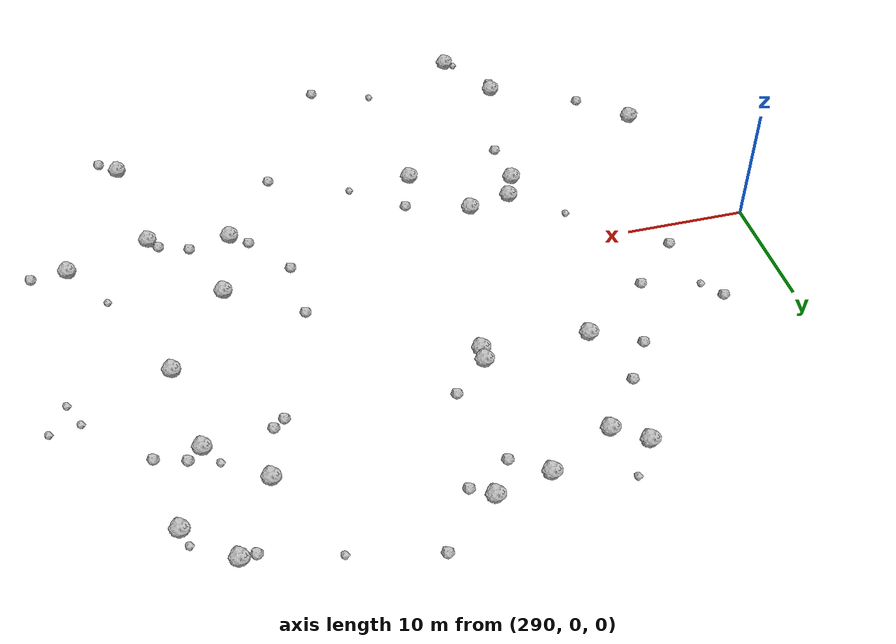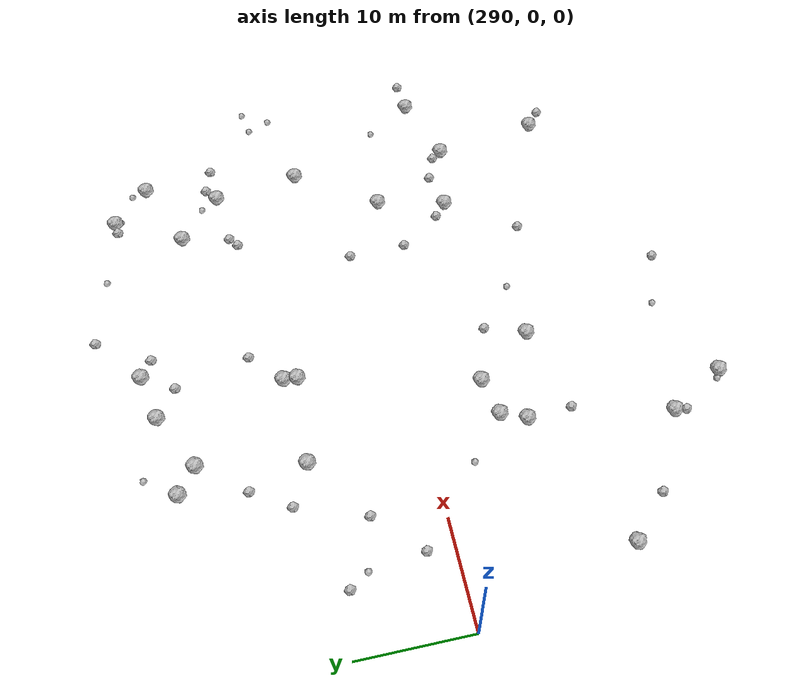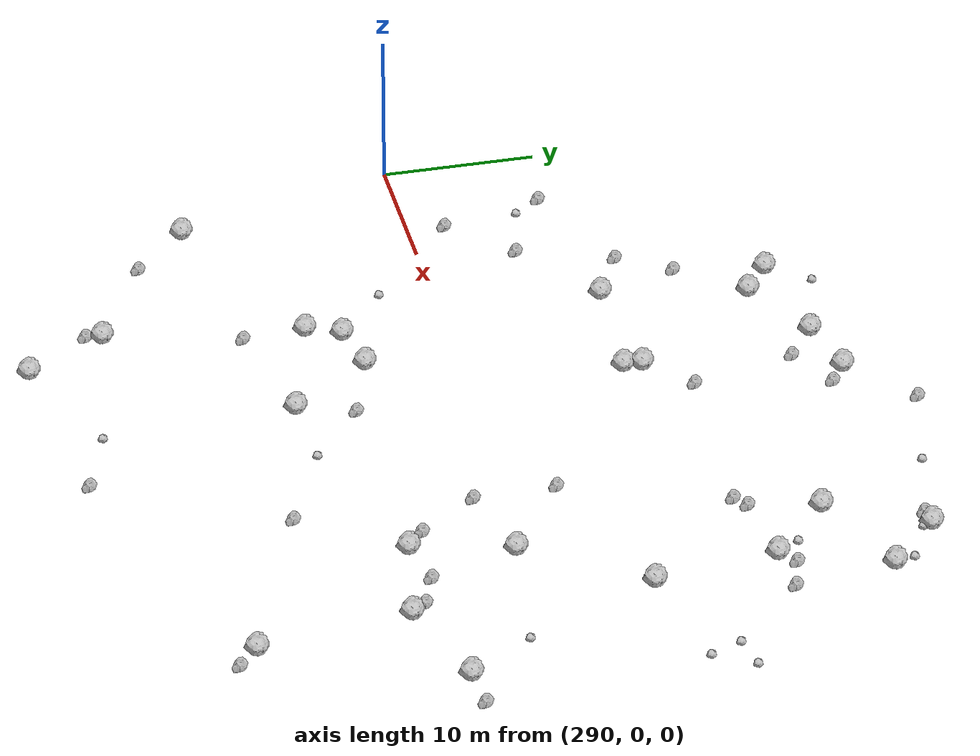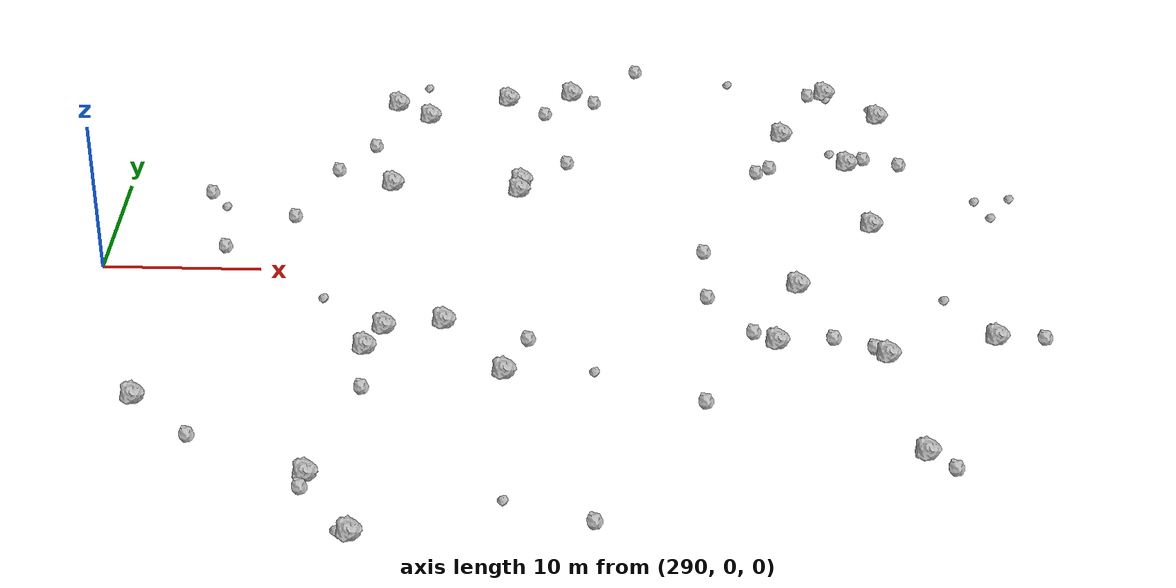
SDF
<sdf version="1.6">
 <world name="default">
  <include><uri>model://sun</uri></include>
  <model name="rock1_8_3">
   <include><uri>model://rock1</uri><pose>318.7757568598004 23.28437504423281 0.5 0 0 0</pose></include>
  </model>
  <model name="rock1_8_4">
   <include><uri>model://rock1</uri><pose>338.6808811876296 6.18847226156506 0.5 0 0 0</pose></include>
  </model>
  <model name="rock1_8_5">
   <include><uri>model://rock1</uri><pose>315.9675963432971 -11.134021184540973 0.5 0 0 0</pose></include>
  </model>
  <model name="rock1_8_6">
   <include><uri>model://rock1</uri><pose>338.72309137357973 -8.628606693581414 0.5 0 0 0</pose></include>
  </model>
  <model name="rock1_8_7">
   <include><uri>model://rock1</uri><pose>308.50104352352184 -26.676733495208346 0.5 0 0 0</pose></include>
  </model>
  <model name="rock1_8_8">
   <include><uri>model://rock1</uri><pose>314.40831440547595 22.36083500076979 0.5 0 0 0</pose></include>
  </model>
  <model name="rock1_8_9">
   <include><uri>model://rock1</uri><pose>333.2984260417622 17.918407116618944 0.5 0 0 0</pose></include>
  </model>
  <model name="rock1_8_10">
   <include><uri>model://rock1</uri><pose>308.42277807576045 -6.641517182637298 0.5 0 0 0</pose></include>
  </model>
  <model name="rock1_8_11">
   <include><uri>model://rock1</uri><pose>340.2347119071711 -18.28526490983169 0.5 0 0 0</pose></include>
  </model>
  <model name="rock1_8_12">
   <include><uri>model://rock1</uri><pose>345.3913116923825 -6.533258199208234 0.5 0 0 0</pose></include>
  </model>
  <model name="rock1_8_13">
   <include><uri>model://rock1</uri><pose>307.4672368485878 -8.856676204022992 0.5 0 0 0</pose></include>
  </model>
  <model name="rock1_8_14">
   <include><uri>model://rock1</uri><pose>315.7815906832523 9.852822588881757 0.5 0 0 0</pose></include>
  </model>
  <model name="rock1_8_15">
   <include><uri>model://rock1</uri><pose>309.1248048289554 19.701991646459078 0.5 0 0 0</pose></include>
  </model>
  <model name="rock1_8_16">
   <include><uri>model://rock1</uri><pose>337.5492328920947 14.06913604780344 0.5 0 0 0</pose></include>
  </model>
  <model name="rock1_8_17">
   <include><uri>model://rock1</uri><pose>340.00811959680493 20.68041391281224 0.5 0 0 0</pose></include>
  </model>
  <model name="rock1_8_18">
   <include><uri>model://rock1</uri><pose>315.874788268368 11.065002026704981 0.5 0 0 0</pose></include>
  </model>
  <model name="rock1_8_19">
   <include><uri>model://rock1</uri><pose>332.17166095021423 -7.448832313529458 0.5 0 0 0</pose></include>
  </model>
  <model name="rock1_8_20">
   <include><uri>model://rock1</uri><pose>307.37881515999845 10.419829924681643 0.5 0 0 0</pose></include>
  </model>
  <model name="rock1_8_21">
   <include><uri>model://rock1</uri><pose>312.0172239082052 -5.921945636129344 0.5 0 0 0</pose></include>
  </model>
  <model name="rock1_8_22">
   <include><uri>model://rock1</uri><pose>294.53545321785566 -14.432014913531045 0.5 0 0 0</pose></include>
  </model>
  <model name="rock1_8_23">
   <include><uri>model://rock1</uri><pose>333.65509030437573 -1.1614307665831625 0.5 0 0 0</pose></include>
  </model>
  <model name="rock1_8_24">
   <include><uri>model://rock1</uri><pose>336.5232864060995 23.95498868831136 0.5 0 0 0</pose></include>
  </model>
  <model name="rock1_8_25">
   <include><uri>model://rock1</uri><pose>306.7677256426468 21.41070202268169 0.5 0 0 0</pose></include>
  </model>
  <model name="rock1_8_26">
   <include><uri>model://rock1</uri><pose>305.49184237793895 -21.514937797220774 0.5 0 0 0</pose></include>
  </model>
  <model name="rock2_8_0">
   <include><uri>model://rock2</uri><pose>331.4328481759642 12.879748188487177 0.3 0 0 0</pose></include>
  </model>
  <model name="rock2_8_1">
   <include><uri>model://rock2</uri><pose>307.69259958126787 -12.886401089149338 0.3 0 0 0</pose></include>
  </model>
  <model name="rock2_8_2">
   <include><uri>model://rock2</uri><pose>332.3283508272951 13.55125110597622 0.3 0 0 0</pose></include>
  </model>
  <model name="rock2_8_3">
   <include><uri>model://rock2</uri><pose>321.6727723382732 -25.082867534015033 0.3 0 0 0</pose></include>
  </model>
  <model name="rock2_8_4">
   <include><uri>model://rock2</uri><pose>341.7080300174545 -19.579580110463514 0.3 0 0 0</pose></include>
  </model>
  <model name="rock2_8_5">
   <include><uri>model://rock2</uri><pose>318.76917102354844 13.719671715177114 0.3 0 0 0</pose></include>
  </model>
  <model name="rock2_8_6">
   <include><uri>model://rock2</uri><pose>337.96452956071255 -7.6786231559725024 0.3 0 0 0</pose></include>
  </model>
  <model name="rock2_8_7">
   <include><uri>model://rock2</uri><pose>297.4518501180062 2.3829534263134917 0.3 0 0 0</pose></include>
  </model>
  <model name="rock2_8_8">
   <include><uri>model://rock2</uri><pose>330.7564669953912 -6.323617864250387 0.3 0 0 0</pose></include>
  </model>
  <model name="rock2_8_9">
   <include><uri>model://rock2</uri><pose>327.8166817898334 -13.646444556443313 0.3 0 0 0</pose></include>
  </model>
  <model name="rock2_8_10">
   <include><uri>model://rock2</uri><pose>335.34697053731225 23.836316659440598 0.3 0 0 0</pose></include>
  </model>
  <model name="rock2_8_11">
   <include><uri>model://rock2</uri><pose>335.5598708589397 -6.785104447559473 0.3 0 0 0</pose></include>
  </model>
  <model name="rock2_8_12">
   <include><uri>model://rock2</uri><pose>341.0072853072554 14.243735863428405 0.3 0 0 0</pose></include>
  </model>
  <model name="rock2_8_13">
   <include><uri>model://rock2</uri><pose>327.99973959736 -2.5506308685625214 0.3 0 0 0</pose></include>
  </model>
  <model name="rock2_8_14">
   <include><uri>model://rock2</uri><pose>348.27217062503235 -6.330820536569419 0.3 0 0 0</pose></include>
  </model>
  <model name="rock2_8_15">
   <include><uri>model://rock2</uri><pose>305.7603722826989 15.60211139458631 0.3 0 0 0</pose></include>
  </model>
  <model name="rock2_8_16">
   <include><uri>model://rock2</uri><pose>305.3072856188204 -22.574648403133928 0.3 0 0 0</pose></include>
  </model>
  <model name="rock2_8_17">
   <include><uri>model://rock2</uri><pose>298.27596994013584 -17.939383407417576 0.3 0 0 0</pose></include>
  </model>
  <model name="rock2_8_18">
   <include><uri>model://rock2</uri><pose>323.16926817141643 26.921739345908854 0.3 0 0 0</pose></include>
  </model>
  <model name="rock2_8_19">
   <include><uri>model://rock2</uri><pose>338.66390382397384 14.956850126512862 0.3 0 0 0</pose></include>
  </model>
  <model name="rock2_8_20">
   <include><uri>model://rock2</uri><pose>320.35166630508843 22.22972128879797 0.3 0 0 0</pose></include>
  </model>
  <model name="rock2_8_21">
   <include><uri>model://rock2</uri><pose>303.5975450703153 12.274497981421767 0.3 0 0 0</pose></include>
  </model>
  <model name="rock2_8_22">
   <include><uri>model://rock2</uri><pose>317.0082607144404 20.47532761138212 0.3 0 0 0</pose></include>
  </model>
  <model name="rock2_8_23">
   <include><uri>model://rock2</uri><pose>317.2022144068608 -7.543069026387048 0.3 0 0 0</pose></include>
  </model>
  <model name="rock2_8_24">
   <include><uri>model://rock2</uri><pose>327.8264744771744 2.6982607095151607 0.3 0 0 0</pose></include>
  </model>
  <model name="rock2_8_25">
   <include><uri>model://rock2</uri><pose>301.4274919826024 6.227570621101776 0.3 0 0 0</pose></include>
  </model>
  <model name="rock2_8_26">
   <include><uri>model://rock2</uri><pose>295.5860135099469 9.058856647460566 0.3 0 0 0</pose></include>
  </model>
  <model name="rock3_8_0">
   <include><uri>model://rock3</uri><pose>339.5227892337617 22.015346017655034 0.2 0 0 0</pose></include>
  </model>
  <model name="rock3_8_1">
   <include><uri>model://rock3</uri><pose>304.3629304397828 -3.421708384394666 0.2 0 0 0</pose></include>
  </model>
  <model name="rock3_8_2">
   <include><uri>model://rock3</uri><pose>316.5789847577921 -23.398571969850217 0.2 0 0 0</pose></include>
  </model>
  <model name="rock3_8_3">
   <include><uri>model://rock3</uri><pose>296.7678725355144 7.318357320132506 0.2 0 0 0</pose></include>
  </model>
  <model name="rock3_8_4">
   <include><uri>model://rock3</uri><pose>307.6934248353866 -26.34941070778652 0.2 0 0 0</pose></include>
  </model>
  <model name="rock3_8_5">
   <include><uri>model://rock3</uri><pose>346.4669293431051 7.63562586998728 0.2 0 0 0</pose></include>
  </model>
  <model name="rock3_8_6">
   <include><uri>model://rock3</uri><pose>336.5955839853781 23.398739590303137 0.2 0 0 0</pose></include>
  </model>
  <model name="rock3_8_7">
   <include><uri>model://rock3</uri><pose>321.2753668214549 -10.839293206310817 0.2 0 0 0</pose></include>
  </model>
  <model name="rock3_8_8">
   <include><uri>model://rock3</uri><pose>336.4427683057617 15.609584427016102 0.2 0 0 0</pose></include>
  </model>
  <model name="rock3_8_9">
   <include><uri>model://rock3</uri><pose>347.91783487762797 10.074721096066753 0.2 0 0 0</pose></include>
  </model>
  <model name="rock3_8_10">
   <include><uri>model://rock3</uri><pose>345.60477629679184 9.656740807203398 0.2 0 0 0</pose></include>
  </model>
  <model name="rock3_8_11">
   <include><uri>model://rock3</uri><pose>329.7189553921698 25.314006477089713 0.2 0 0 0</pose></include>
  </model>
  <model name="rock3_8_12">
   <include><uri>model://rock3</uri><pose>308.64645757467287 24.068515981526545 0.2 0 0 0</pose></include>
  </model>
  <model name="rock3_8_13">
   <include><uri>model://rock3</uri><pose>342.55846762030205 -2.3542952548874077 0.2 0 0 0</pose></include>
  </model>
 </world>
</sdf>
